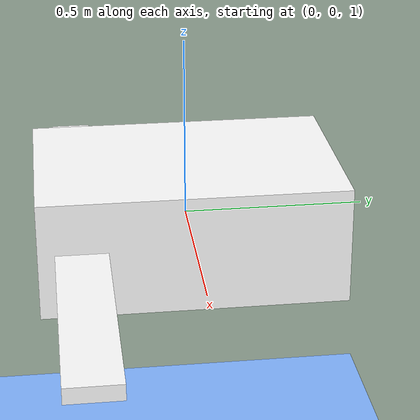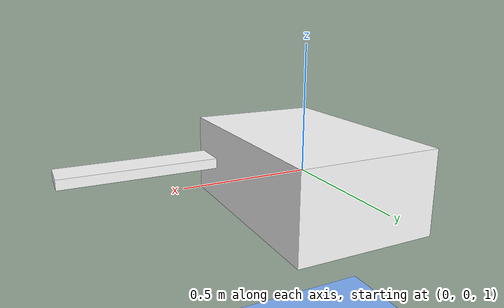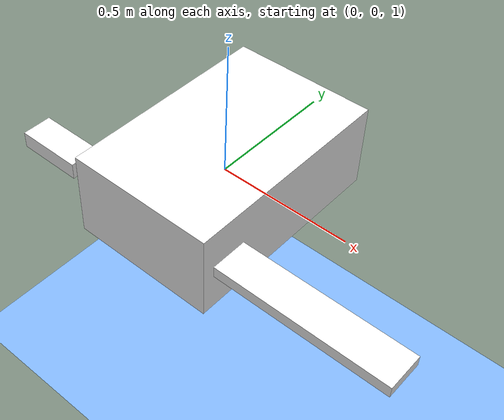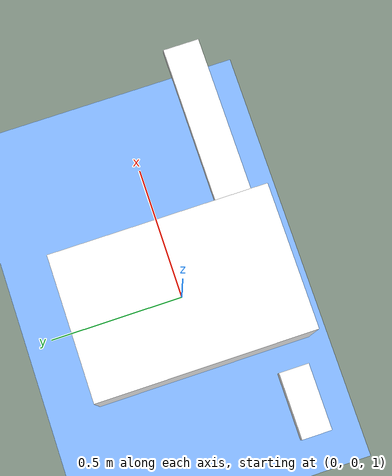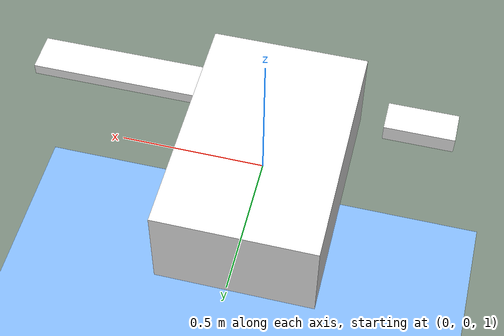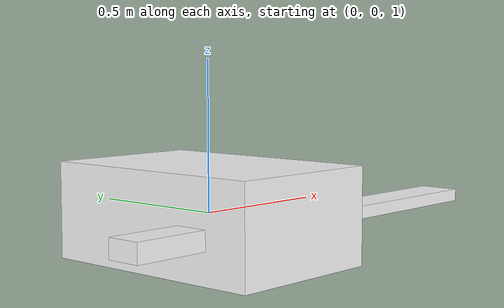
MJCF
<mujoco>
    <worldbody>
        <light diffuse=".5 .5 .5" pos="0 0 2" dir="0 -1 0" />
        <geom type="plane" size="10 10 0.1" rgba="0.5 0.7 1 1" />

        <body name="flappybird" pos="0 0 1" euler="0 0 0">
            <joint type="free" axis="0 0 0" pos="0 0 0" />
            <body name="body" pos="0 0 0" euler="0 0 0">
                <geom type="box" size="0.27638765788409403 0.4154780133941085 0.16245092992481308" rgba="1 1 1 1" mass="0.01109098027260619" />
            </body>

            <body name="wing1" pos=".5 -.3 0" euler="0 -90 0">
                <joint name="joint1" type="hinge" axis="0 1 0" pos="0 0 .25" range="-45 45" />
                <geom type="box" size="0.02087661206633604 0.07026827987529587 0.414610763834066" rgba="1 1 1 1" mass="0.6634905823604074" />
            </body>

            <body name="wing2" pos="-.5 -.3 0" euler="0 90 0">
                <joint name="joint2" type="hinge" axis="0 1 0" pos="0 0 .25" range="-45 45" />
                <geom type="box" size="0.03083127755810227 0.05707761878007346 0.12535384357019244" rgba="1 1 1 1" mass="0.39429769598387565" />
            </body>

        </body>
    </worldbody>

    <actuator>
        <motor joint="joint1" name="m1" gear="11.029274374509697" ctrllimited="true" ctrlrange="-5 5" />
        <motor joint="joint2" name="m2" gear="17.70074482075892" ctrllimited="true" ctrlrange="-5 5" />

</actuator>

</mujoco>
